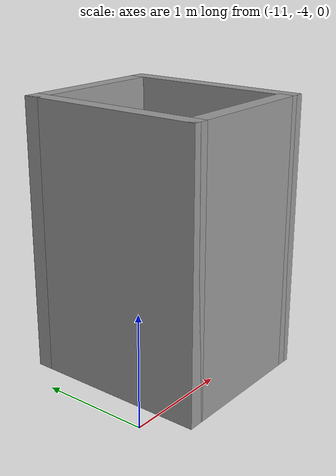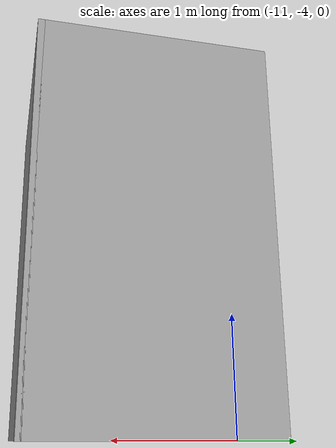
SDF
<?xml version='1.0'?>
<sdf version='1.7'>
  <model name='box_block'>
    <pose>-5.38207 -2.17259 0 0 -0 0</pose>
    <link name='Wall_33'>
      <collision name='Wall_33_Collision'>
        <geometry>
          <box>
            <size>1.75 0.15 2.5</size>
          </box>
        </geometry>
        <pose>0 0 1.25 0 -0 0</pose>
      </collision>
      <visual name='Wall_33_Visual'>
        <pose>0 0 1.25 0 -0 0</pose>
        <geometry>
          <box>
            <size>1.75 0.15 2.5</size>
          </box>
        </geometry>
        <material>
          <script>
            <uri>file://media/materials/scripts/gazebo.material</uri>
            <name>Gazebo/Grey</name>
          </script>
          <ambient>1 1 1 1</ambient>
        </material>
        <meta>
          <layer>0</layer>
        </meta>
      </visual>
      <pose>-5.30707 -1.29759 0 0 -0 -1.5708</pose>
    </link>
    <link name='Wall_34'>
      <collision name='Wall_34_Collision'>
        <geometry>
          <box>
            <size>1.5 0.15 2.5</size>
          </box>
        </geometry>
        <pose>0 0 1.25 0 -0 0</pose>
      </collision>
      <visual name='Wall_34_Visual'>
        <pose>0 0 1.25 0 -0 0</pose>
        <geometry>
          <box>
            <size>1.5 0.15 2.5</size>
          </box>
        </geometry>
        <material>
          <script>
            <uri>file://media/materials/scripts/gazebo.material</uri>
            <name>Gazebo/Grey</name>
          </script>
          <ambient>1 1 1 1</ambient>
        </material>
        <meta>
          <layer>0</layer>
        </meta>
      </visual>
      <pose>-4.63207 -2.09759 0 0 -0 0</pose>
    </link>
    <link name='Wall_35'>
      <collision name='Wall_35_Collision'>
        <geometry>
          <box>
            <size>1.75 0.15 2.5</size>
          </box>
        </geometry>
        <pose>0 0 1.25 0 -0 0</pose>
      </collision>
      <visual name='Wall_35_Visual'>
        <pose>0 0 1.25 0 -0 0</pose>
        <geometry>
          <box>
            <size>1.75 0.15 2.5</size>
          </box>
        </geometry>
        <material>
          <script>
            <uri>file://media/materials/scripts/gazebo.material</uri>
            <name>Gazebo/Grey</name>
          </script>
          <ambient>1 1 1 1</ambient>
        </material>
        <meta>
          <layer>0</layer>
        </meta>
      </visual>
      <pose>-3.95707 -1.29759 0 0 -0 1.5708</pose>
    </link>
    <link name='Wall_36'>
      <collision name='Wall_36_Collision'>
        <geometry>
          <box>
            <size>1.5 0.15 2.5</size>
          </box>
        </geometry>
        <pose>0 0 1.25 0 -0 0</pose>
      </collision>
      <visual name='Wall_36_Visual'>
        <pose>0 0 1.25 0 -0 0</pose>
        <geometry>
          <box>
            <size>1.5 0.15 2.5</size>
          </box>
        </geometry>
        <material>
          <script>
            <uri>file://media/materials/scripts/gazebo.material</uri>
            <name>Gazebo/Grey</name>
          </script>
          <ambient>1 1 1 1</ambient>
        </material>
        <meta>
          <layer>0</layer>
        </meta>
      </visual>
      <pose>-4.63207 -0.497588 0 0 -0 3.14159</pose>
    </link>
    <static>1</static>
  </model>
</sdf>
